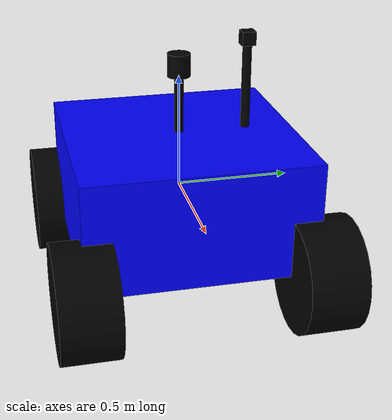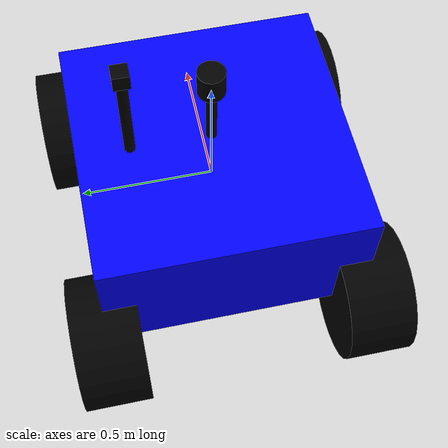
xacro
<?xml version="1.0"?>
<robot xmlns:xacro="http://www.ros.org/wiki/xacro" name="four_wheel_bot">

  <material name="black">
    <color rgba="0 0 0 1"/>
  </material>
  <material name="blue">
    <color rgba="0 0 1 1"/>
  </material>

  <xacro:property name="wheel_radius" value="0.25"/>
  <xacro:property name="wheel_length" value="0.25"/>
  <xacro:property name="wheel_color" value="black"/>

  <link name="base_link">
    <visual>
      <geometry>
        <box size="1 1 0.5"/>
      </geometry>
      <material name="blue"/>
    </visual>
    <collision>
      <geometry>
        <box size="1 1 0.5"/>
      </geometry>
    </collision>
    <inertial>
      <mass value="1"/>
      <inertia ixx="0.1" ixy="0.0" ixz="0.0" iyy="0.1" iyz="0.0" izz="0.1"/>
    </inertial>
  </link>

  <gazebo reference="base_link">
    <material>Gazebo/Green</material>
  </gazebo>

  <link name="lidar_stand_link">
    <visual>
      <origin xyz="0 0 0.15"/>
      <geometry>
        <cylinder radius="0.02" length="0.3"/>
      </geometry>
      <material name="black"/>
    </visual>
    <collision>
      <origin xyz="0 0 0.15"/>
      <geometry>
        <cylinder radius="0.02" length="0.3"/>
      </geometry>
    </collision>
    <inertial>
      <mass value="0.05"/>
      <inertia ixx="0.0001" ixy="0" ixz="0" iyy="0.0001" iyz="0" izz="0.0001"/>
    </inertial>
  </link>

  <joint name="lidar_stand_joint" type="fixed">
    <parent link="base_link"/>
    <child link="lidar_stand_link"/>
    <origin xyz="0 0 0.25"/>
  </joint>

  <xacro:macro name="wheel_with_joint" params="wheel_name joint_name x y z">
    <link name="${wheel_name}">
      <visual>
        <origin rpy="1.5708 0 0"/>
        <geometry>
          <cylinder length="${wheel_length}" radius="${wheel_radius}"/>
        </geometry>
        <material name="${wheel_color}"/>
      </visual>
      <collision>
        <origin rpy="1.5708 0 0"/>
        <geometry>
          <cylinder length="${wheel_length}" radius="${wheel_radius}"/>
        </geometry>
      </collision>
      <inertial>
        <mass value="0.2"/>
        <inertia ixx="0.01" ixy="0" ixz="0" iyy="0.01" iyz="0" izz="0.01"/>
      </inertial>
    </link>

    <gazebo reference="${wheel_name}">
      <material>Gazebo/Black</material>
    </gazebo>

    <joint name="${joint_name}" type="continuous">
      <parent link="base_link"/>
      <child link="${wheel_name}"/>
      <origin xyz="${x} ${y} ${z}"/>
      <axis xyz="0 1 0"/>
      <limit effort="1.0" velocity="1.0"/>
    </joint>
  </xacro:macro>

  <xacro:wheel_with_joint wheel_name="front_left_wheel"  joint_name="front_left_joint"  x="0.5"  y="0.5"  z="-0.25"/>
  <xacro:wheel_with_joint wheel_name="front_right_wheel" joint_name="front_right_joint" x="0.5"  y="-0.5" z="-0.25"/>
  <xacro:wheel_with_joint wheel_name="rear_left_wheel"   joint_name="rear_left_joint"   x="-0.5" y="0.5"  z="-0.25"/>
  <xacro:wheel_with_joint wheel_name="rear_right_wheel"  joint_name="rear_right_joint"  x="-0.5" y="-0.5" z="-0.25"/>

  <transmission name="rear_left_trans">
    <type>transmission_interface/SimpleTransmission</type>
    <joint name="rear_left_joint">
      <hardwareInterface>hardware_interface/VelocityJointInterface</hardwareInterface>
    </joint>
    <actuator name="rear_left_motor">
      <mechanicalReduction>1</mechanicalReduction>
    </actuator>
  </transmission>

  <transmission name="rear_right_trans">
    <type>transmission_interface/SimpleTransmission</type>
    <joint name="rear_right_joint">
      <hardwareInterface>hardware_interface/VelocityJointInterface</hardwareInterface>
    </joint>
    <actuator name="rear_right_motor">
      <mechanicalReduction>1</mechanicalReduction>
    </actuator>
  </transmission>

  <gazebo>
    <plugin name="diff_drive_controller" filename="libgazebo_ros_diff_drive.so">
      <ros>
        <namespace>/</namespace>
        <remapping>cmd_vel:=cmd_vel</remapping>
      </ros>
      <update_rate>50.0</update_rate>
      <left_joint>rear_left_joint</left_joint>
      <right_joint>rear_right_joint</right_joint>
      <wheel_separation>1.0</wheel_separation>
      <wheel_radius>${wheel_radius}</wheel_radius>
      <wheel_diameter>0.5</wheel_diameter>
      <wheel_acceleration>1.0</wheel_acceleration>
      <wheel_torque>10.0</wheel_torque>
      <publish_wheel_tf>true</publish_wheel_tf>
      <publish_wheel_joint_state>true</publish_wheel_joint_state>
      <legacy_mode>false</legacy_mode>
    </plugin>
  </gazebo>

  <link name="lidar_link">
    <visual>
      <origin xyz="0 0 0.15"/>
      <geometry>
        <cylinder radius="0.05" length="0.1"/>
      </geometry>
      <material name="black"/>
    </visual>
    <collision>
      <origin xyz="0 0 0.15"/>
      <geometry>
        <cylinder radius="0.05" length="0.1"/>
      </geometry>
    </collision>
    <inertial>
      <mass value="0.1"/>
      <inertia ixx="0.0001" ixy="0" ixz="0" iyy="0.0001" iyz="0" izz="0.0001"/>
    </inertial>
  </link>

  <joint name="lidar_joint" type="fixed">
    <parent link="lidar_stand_link"/>
    <child link="lidar_link"/>
    <origin xyz="0 0 0.15"/>
  </joint>

  <gazebo reference="lidar_link">
    <sensor name="lidar_sensor" type="ray">
      <always_on>true</always_on>
      <update_rate>10.0</update_rate>
      <visualize>true</visualize>
      <ray>
        <scan>
          <horizontal>
            <samples>720</samples>
            <resolution>1</resolution>
            <min_angle>-1.39626</min_angle>
            <max_angle>1.39626</max_angle>
          </horizontal>
        </scan>
        <range>
          <min>0.12</min>
          <max>10.0</max>
          <resolution>0.01</resolution>
        </range>
        <noise>
          <type>gaussian</type>
          <mean>0.0</mean>
          <stddev>0.01</stddev>
        </noise>
      </ray>
      <plugin name="gazebo_ros_ray_sensor" filename="libgazebo_ros_ray_sensor.so">
        <ros>
          <remapping>~/out:=scan</remapping>
        </ros>
        <frame_name>lidar_link</frame_name>
        <output_type>sensor_msgs/LaserScan</output_type>
      </plugin>
    </sensor>
  </gazebo>

<link name="camera_stand_link">
  <visual>
    <origin xyz="0 0 0.2"/>
    <geometry>
      <cylinder radius="0.02" length="0.4"/>
    </geometry>
    <material name="black"/>
  </visual>
  <collision>
    <origin xyz="0 0 0.2"/>
    <geometry>
      <cylinder radius="0.02" length="0.4"/>
    </geometry>
  </collision>
  <inertial>
    <mass value="0.05"/>
    <inertia ixx="0.0001" ixy="0" ixz="0" iyy="0.0001" iyz="0" izz="0.0001"/>
  </inertial>
</link>

<joint name="camera_stand_joint" type="fixed">
  <parent link="base_link"/>
  <child link="camera_stand_link"/>
  <origin xyz="0 0.3 0.25"/>
</joint>

<link name="camera_link">
  <visual>
    <origin xyz="0 0 0"/>
    <geometry>
      <box size="0.06 0.06 0.06"/>
    </geometry>
    <material name="black"/>
  </visual>
  <collision>
    <origin xyz="0 0 0"/>
    <geometry>
      <box size="0.06 0.06 0.06"/>
    </geometry>
  </collision>
  <inertial>
    <mass value="0.1"/>
    <inertia ixx="0.001" ixy="0" ixz="0" iyy="0.001" iyz="0" izz="0.001"/>
  </inertial>
</link>

<joint name="camera_joint" type="fixed">
  <parent link="camera_stand_link"/>
  <child link="camera_link"/>
  <origin xyz="0 0 0.4" rpy="0 0 0"/>
</joint>

<gazebo reference="camera_link">
  <sensor name="camera_sensor" type="camera">
    <always_on>true</always_on>
    <update_rate>30.0</update_rate>
    <visualize>true</visualize>
    <camera>
      <horizontal_fov>1.3962634</horizontal_fov>
      <image>
        <width>640</width>
        <height>480</height>
        <format>R8G8B8</format>
      </image>
      <clip>
        <near>0.1</near>
        <far>100</far>
      </clip>
    </camera>
    <plugin name="gazebo_ros_camera" filename="libgazebo_ros_camera.so">
      <ros>
        <remapping>~/image_raw:=camera/image_raw</remapping>
      </ros>
      <camera_name>camera</camera_name>
      <frame_name>camera_link</frame_name>
    </plugin>
  </sensor>
</gazebo>

</robot>
